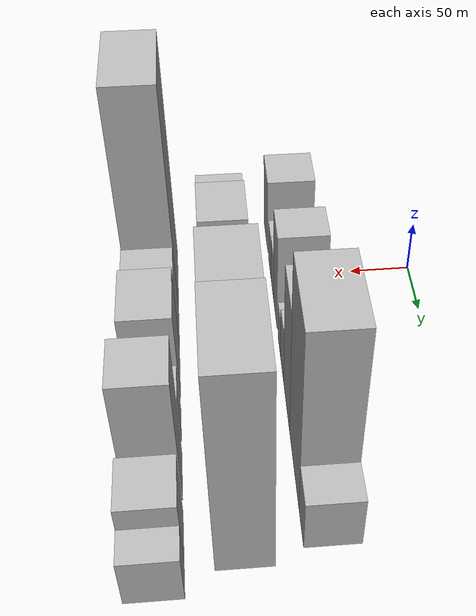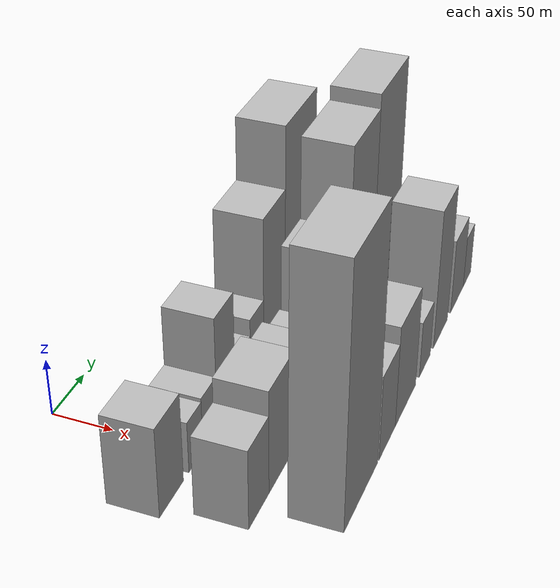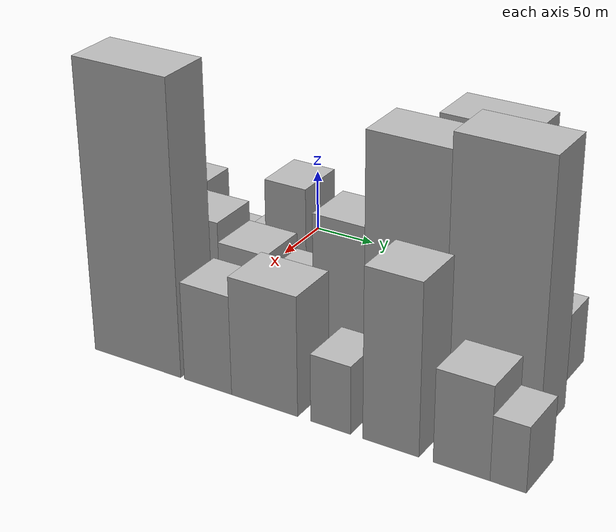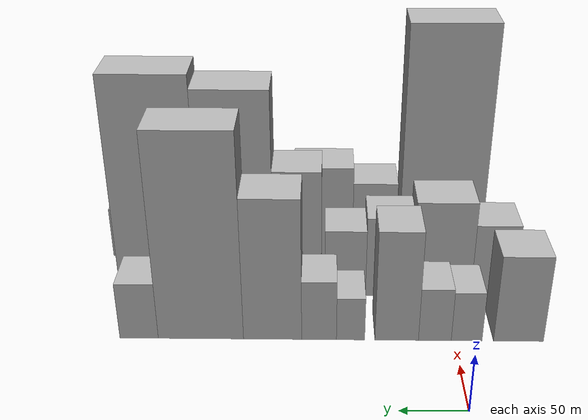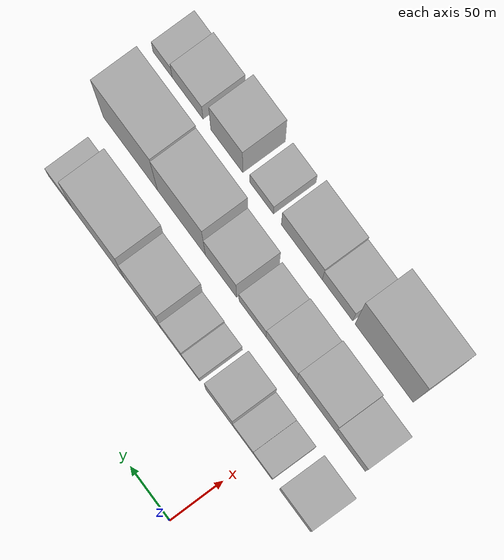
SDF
<sdf version="1.6">
 <world name="default">
  <model name="building_16">
   <static>1</static>
   <pose>100.0000 -49.8729 0 0.000000 0.000000 0.000000</pose>
   <link name="link">
    <pose>0 0 39.00 0 0 0</pose>
    <collision name="collision"><geometry><box><size>40.0000 39.1161 78.0000</size></box></geometry></collision>
    <visual name="visual">
     <cast_shadows>0</cast_shadows>
     <geometry><box><size>40.0000 39.1161 78.0000</size></box></geometry>
     <material>
      <script>
       <uri>model://HANNAS_wall/materials/scripts</uri>
       <uri>model://HANNAS_wall/materials/textures</uri>
       <name>vrc/HANNAS_wall</name>
      </script>
     </material>
    </visual>
   </link>
  </model>
  <model name="building_17">
   <static>1</static>
   <pose>100.0000 -9.2193 0 0.000000 0.000000 0.000000</pose>
   <link name="link">
    <pose>0 0 22.50 0 0 0</pose>
    <collision name="collision"><geometry><box><size>40.0000 24.1911 45.0000</size></box></geometry></collision>
    <visual name="visual">
     <cast_shadows>0</cast_shadows>
     <geometry><box><size>40.0000 24.1911 45.0000</size></box></geometry>
     <material>
      <script>
       <uri>model://HANNAS_wall/materials/scripts</uri>
       <uri>model://HANNAS_wall/materials/textures</uri>
       <name>vrc/HANNAS_wall</name>
      </script>
     </material>
    </visual>
   </link>
  </model>
  <model name="building_18">
   <static>1</static>
   <pose>100.0000 15.7469 0 0.000000 0.000000 0.000000</pose>
   <link name="link">
    <pose>0 0 24.00 0 0 0</pose>
    <collision name="collision"><geometry><box><size>40.0000 25.7412 48.0000</size></box></geometry></collision>
    <visual name="visual">
     <cast_shadows>0</cast_shadows>
     <geometry><box><size>40.0000 25.7412 48.0000</size></box></geometry>
     <material>
      <script>
       <uri>model://HANNAS_wall/materials/scripts</uri>
       <uri>model://HANNAS_wall/materials/textures</uri>
       <name>vrc/HANNAS_wall</name>
      </script>
     </material>
    </visual>
   </link>
  </model>
  <model name="building_19">
   <static>1</static>
   <pose>100.0000 45.7163 0 0.000000 0.000000 0.000000</pose>
   <link name="link">
    <pose>0 0 49.50 0 0 0</pose>
    <collision name="collision"><geometry><box><size>40.0000 34.1975 99.0000</size></box></geometry></collision>
    <visual name="visual">
     <cast_shadows>0</cast_shadows>
     <geometry><box><size>40.0000 34.1975 99.0000</size></box></geometry>
     <material>
      <script>
       <uri>model://HANNAS_wall/materials/scripts</uri>
       <uri>model://HANNAS_wall/materials/textures</uri>
       <name>vrc/HANNAS_wall</name>
      </script>
     </material>
    </visual>
   </link>
  </model>
  <model name="building_20">
   <static>1</static>
   <pose>100.0000 81.9478 0 0.000000 0.000000 0.000000</pose>
   <link name="link">
    <pose>0 0 19.50 0 0 0</pose>
    <collision name="collision"><geometry><box><size>40.0000 22.2656 39.0000</size></box></geometry></collision>
    <visual name="visual">
     <cast_shadows>0</cast_shadows>
     <geometry><box><size>40.0000 22.2656 39.0000</size></box></geometry>
     <material>
      <script>
       <uri>model://HANNAS_wall/materials/scripts</uri>
       <uri>model://HANNAS_wall/materials/textures</uri>
       <name>vrc/HANNAS_wall</name>
      </script>
     </material>
    </visual>
   </link>
  </model>
  <model name="building_21">
   <static>1</static>
   <pose>100.0000 106.7614 0 0.000000 0.000000 0.000000</pose>
   <link name="link">
    <pose>0 0 27.00 0 0 0</pose>
    <collision name="collision"><geometry><box><size>40.0000 27.3615 54.0000</size></box></geometry></collision>
    <visual name="visual">
     <cast_shadows>0</cast_shadows>
     <geometry><box><size>40.0000 27.3615 54.0000</size></box></geometry>
     <material>
      <script>
       <uri>model://HANNAS_wall/materials/scripts</uri>
       <uri>model://HANNAS_wall/materials/textures</uri>
       <name>vrc/HANNAS_wall</name>
      </script>
     </material>
    </visual>
   </link>
  </model>
  <model name="building_22">
   <static>1</static>
   <pose>100.0000 143.3555 0 0.000000 0.000000 0.000000</pose>
   <link name="link">
    <pose>0 0 63.00 0 0 0</pose>
    <collision name="collision"><geometry><box><size>40.0000 45.8266 126.0000</size></box></geometry></collision>
    <visual name="visual">
     <cast_shadows>0</cast_shadows>
     <geometry><box><size>40.0000 45.8266 126.0000</size></box></geometry>
     <material>
      <script>
       <uri>model://HANNAS_wall/materials/scripts</uri>
       <uri>model://HANNAS_wall/materials/textures</uri>
       <name>vrc/HANNAS_wall</name>
      </script>
     </material>
    </visual>
   </link>
  </model>
  <model name="building_23">
   <static>1</static>
   <pose>100.0000 199.9221 0 0.000000 0.000000 0.000000</pose>
   <link name="link">
    <pose>0 0 90.00 0 0 0</pose>
    <collision name="collision"><geometry><box><size>40.0000 67.3065 180.0000</size></box></geometry></collision>
    <visual name="visual">
     <cast_shadows>0</cast_shadows>
     <geometry><box><size>40.0000 67.3065 180.0000</size></box></geometry>
     <material>
      <script>
       <uri>model://HANNAS_wall/materials/scripts</uri>
       <uri>model://HANNAS_wall/materials/textures</uri>
       <name>vrc/HANNAS_wall</name>
      </script>
     </material>
    </visual>
   </link>
  </model>
  <model name="building_24">
   <static>1</static>
   <pose>100.0000 248.7436 0 0.000000 0.000000 0.000000</pose>
   <link name="link">
    <pose>0 0 25.50 0 0 0</pose>
    <collision name="collision"><geometry><box><size>40.0000 30.3366 51.0000</size></box></geometry></collision>
    <visual name="visual">
     <cast_shadows>0</cast_shadows>
     <geometry><box><size>40.0000 30.3366 51.0000</size></box></geometry>
     <material>
      <script>
       <uri>model://HANNAS_wall/materials/scripts</uri>
       <uri>model://HANNAS_wall/materials/textures</uri>
       <name>vrc/HANNAS_wall</name>
      </script>
     </material>
    </visual>
   </link>
  </model>
  <model name="building_46">
   <static>1</static>
   <pose>160.0000 -39.2891 0 0.000000 0.000000 0.000000</pose>
   <link name="link">
    <pose>0 0 34.50 0 0 0</pose>
    <collision name="collision"><geometry><box><size>40.0000 36.9468 69.0000</size></box></geometry></collision>
    <visual name="visual">
     <cast_shadows>0</cast_shadows>
     <geometry><box><size>40.0000 36.9468 69.0000</size></box></geometry>
     <material>
      <script>
       <uri>model://HANNAS_wall/materials/scripts</uri>
       <uri>model://HANNAS_wall/materials/textures</uri>
       <name>vrc/HANNAS_wall</name>
      </script>
     </material>
    </visual>
   </link>
  </model>
  <model name="building_47">
   <static>1</static>
   <pose>160.0000 3.8355 0 0.000000 0.000000 0.000000</pose>
   <link name="link">
    <pose>0 0 45.00 0 0 0</pose>
    <collision name="collision"><geometry><box><size>40.0000 49.3026 90.0000</size></box></geometry></collision>
    <visual name="visual">
     <cast_shadows>0</cast_shadows>
     <geometry><box><size>40.0000 49.3026 90.0000</size></box></geometry>
     <material>
      <script>
       <uri>model://HANNAS_wall/materials/scripts</uri>
       <uri>model://HANNAS_wall/materials/textures</uri>
       <name>vrc/HANNAS_wall</name>
      </script>
     </material>
    </visual>
   </link>
  </model>
  <model name="building_48">
   <static>1</static>
   <pose>160.0000 48.2346 0 0.000000 0.000000 0.000000</pose>
   <link name="link">
    <pose>0 0 37.50 0 0 0</pose>
    <collision name="collision"><geometry><box><size>40.0000 39.4956 75.0000</size></box></geometry></collision>
    <visual name="visual">
     <cast_shadows>0</cast_shadows>
     <geometry><box><size>40.0000 39.4956 75.0000</size></box></geometry>
     <material>
      <script>
       <uri>model://HANNAS_wall/materials/scripts</uri>
       <uri>model://HANNAS_wall/materials/textures</uri>
       <name>vrc/HANNAS_wall</name>
      </script>
     </material>
    </visual>
   </link>
  </model>
  <model name="building_49">
   <static>1</static>
   <pose>160.0000 85.1617 0 0.000000 0.000000 0.000000</pose>
   <link name="link">
    <pose>0 0 31.50 0 0 0</pose>
    <collision name="collision"><geometry><box><size>40.0000 34.3585 63.0000</size></box></geometry></collision>
    <visual name="visual">
     <cast_shadows>0</cast_shadows>
     <geometry><box><size>40.0000 34.3585 63.0000</size></box></geometry>
     <material>
      <script>
       <uri>model://HANNAS_wall/materials/scripts</uri>
       <uri>model://HANNAS_wall/materials/textures</uri>
       <name>vrc/HANNAS_wall</name>
      </script>
     </material>
    </visual>
   </link>
  </model>
  <model name="building_50">
   <static>1</static>
   <pose>160.0000 125.2696 0 0.000000 0.000000 0.000000</pose>
   <link name="link">
    <pose>0 0 58.50 0 0 0</pose>
    <collision name="collision"><geometry><box><size>40.0000 39.8573 117.0000</size></box></geometry></collision>
    <visual name="visual">
     <cast_shadows>0</cast_shadows>
     <geometry><box><size>40.0000 39.8573 117.0000</size></box></geometry>
     <material>
      <script>
       <uri>model://HANNAS_wall/materials/scripts</uri>
       <uri>model://HANNAS_wall/materials/textures</uri>
       <name>vrc/HANNAS_wall</name>
      </script>
     </material>
    </visual>
   </link>
  </model>
  <model name="building_51">
   <static>1</static>
   <pose>160.0000 175.7188 0 0.000000 0.000000 0.000000</pose>
   <link name="link">
    <pose>0 0 93.00 0 0 0</pose>
    <collision name="collision"><geometry><box><size>40.0000 61.0412 186.0000</size></box></geometry></collision>
    <visual name="visual">
     <cast_shadows>0</cast_shadows>
     <geometry><box><size>40.0000 61.0412 186.0000</size></box></geometry>
     <material>
      <script>
       <uri>model://HANNAS_wall/materials/scripts</uri>
       <uri>model://HANNAS_wall/materials/textures</uri>
       <name>vrc/HANNAS_wall</name>
      </script>
     </material>
    </visual>
   </link>
  </model>
  <model name="building_52">
   <static>1</static>
   <pose>160.0000 240.9977 0 0.000000 0.000000 0.000000</pose>
   <link name="link">
    <pose>0 0 99.00 0 0 0</pose>
    <collision name="collision"><geometry><box><size>40.0000 69.5166 198.0000</size></box></geometry></collision>
    <visual name="visual">
     <cast_shadows>0</cast_shadows>
     <geometry><box><size>40.0000 69.5166 198.0000</size></box></geometry>
     <material>
      <script>
       <uri>model://HANNAS_wall/materials/scripts</uri>
       <uri>model://HANNAS_wall/materials/textures</uri>
       <name>vrc/HANNAS_wall</name>
      </script>
     </material>
    </visual>
   </link>
  </model>
  <model name="building_79">
   <static>1</static>
   <pose>220.0000 -0.7405 0 0.000000 0.000000 0.000000</pose>
   <link name="link">
    <pose>0 0 109.50 0 0 0</pose>
    <collision name="collision"><geometry><box><size>40.0000 73.5130 219.0000</size></box></geometry></collision>
    <visual name="visual">
     <cast_shadows>0</cast_shadows>
     <geometry><box><size>40.0000 73.5130 219.0000</size></box></geometry>
     <material>
      <script>
       <uri>model://HANNAS_wall/materials/scripts</uri>
       <uri>model://HANNAS_wall/materials/textures</uri>
       <name>vrc/HANNAS_wall</name>
      </script>
     </material>
    </visual>
   </link>
  </model>
  <model name="building_80">
   <static>1</static>
   <pose>220.0000 58.3524 0 0.000000 0.000000 0.000000</pose>
   <link name="link">
    <pose>0 0 37.50 0 0 0</pose>
    <collision name="collision"><geometry><box><size>40.0000 38.6726 75.0000</size></box></geometry></collision>
    <visual name="visual">
     <cast_shadows>0</cast_shadows>
     <geometry><box><size>40.0000 38.6726 75.0000</size></box></geometry>
     <material>
      <script>
       <uri>model://HANNAS_wall/materials/scripts</uri>
       <uri>model://HANNAS_wall/materials/textures</uri>
       <name>vrc/HANNAS_wall</name>
      </script>
     </material>
    </visual>
   </link>
  </model>
  <model name="building_81">
   <static>1</static>
   <pose>220.0000 103.7330 0 0.000000 0.000000 0.000000</pose>
   <link name="link">
    <pose>0 0 45.00 0 0 0</pose>
    <collision name="collision"><geometry><box><size>40.0000 52.0886 90.0000</size></box></geometry></collision>
    <visual name="visual">
     <cast_shadows>0</cast_shadows>
     <geometry><box><size>40.0000 52.0886 90.0000</size></box></geometry>
     <material>
      <script>
       <uri>model://HANNAS_wall/materials/scripts</uri>
       <uri>model://HANNAS_wall/materials/textures</uri>
       <name>vrc/HANNAS_wall</name>
      </script>
     </material>
    </visual>
   </link>
  </model>
  <model name="building_82">
   <static>1</static>
   <pose>220.0000 154.8473 0 0.000000 0.000000 0.000000</pose>
   <link name="link">
    <pose>0 0 25.50 0 0 0</pose>
    <collision name="collision"><geometry><box><size>40.0000 30.1401 51.0000</size></box></geometry></collision>
    <visual name="visual">
     <cast_shadows>0</cast_shadows>
     <geometry><box><size>40.0000 30.1401 51.0000</size></box></geometry>
     <material>
      <script>
       <uri>model://HANNAS_wall/materials/scripts</uri>
       <uri>model://HANNAS_wall/materials/textures</uri>
       <name>vrc/HANNAS_wall</name>
      </script>
     </material>
    </visual>
   </link>
  </model>
  <model name="building_83">
   <static>1</static>
   <pose>220.0000 199.3550 0 0.000000 0.000000 0.000000</pose>
   <link name="link">
    <pose>0 0 63.00 0 0 0</pose>
    <collision name="collision"><geometry><box><size>40.0000 40.8753 126.0000</size></box></geometry></collision>
    <visual name="visual">
     <cast_shadows>0</cast_shadows>
     <geometry><box><size>40.0000 40.8753 126.0000</size></box></geometry>
     <material>
      <script>
       <uri>model://HANNAS_wall/materials/scripts</uri>
       <uri>model://HANNAS_wall/materials/textures</uri>
       <name>vrc/HANNAS_wall</name>
      </script>
     </material>
    </visual>
   </link>
  </model>
  <model name="building_84">
   <static>1</static>
   <pose>220.0000 249.5662 0 0.000000 0.000000 0.000000</pose>
   <link name="link">
    <pose>0 0 34.50 0 0 0</pose>
    <collision name="collision"><geometry><box><size>40.0000 39.5471 69.0000</size></box></geometry></collision>
    <visual name="visual">
     <cast_shadows>0</cast_shadows>
     <geometry><box><size>40.0000 39.5471 69.0000</size></box></geometry>
     <material>
      <script>
       <uri>model://HANNAS_wall/materials/scripts</uri>
       <uri>model://HANNAS_wall/materials/textures</uri>
       <name>vrc/HANNAS_wall</name>
      </script>
     </material>
    </visual>
   </link>
  </model>
  <model name="building_85">
   <static>1</static>
   <pose>220.0000 281.6485 0 0.000000 0.000000 0.000000</pose>
   <link name="link">
    <pose>0 0 24.00 0 0 0</pose>
    <collision name="collision"><geometry><box><size>40.0000 24.6175 48.0000</size></box></geometry></collision>
    <visual name="visual">
     <cast_shadows>0</cast_shadows>
     <geometry><box><size>40.0000 24.6175 48.0000</size></box></geometry>
     <material>
      <script>
       <uri>model://HANNAS_wall/materials/scripts</uri>
       <uri>model://HANNAS_wall/materials/textures</uri>
       <name>vrc/HANNAS_wall</name>
      </script>
     </material>
    </visual>
   </link>
  </model>
 </world>
</sdf>
